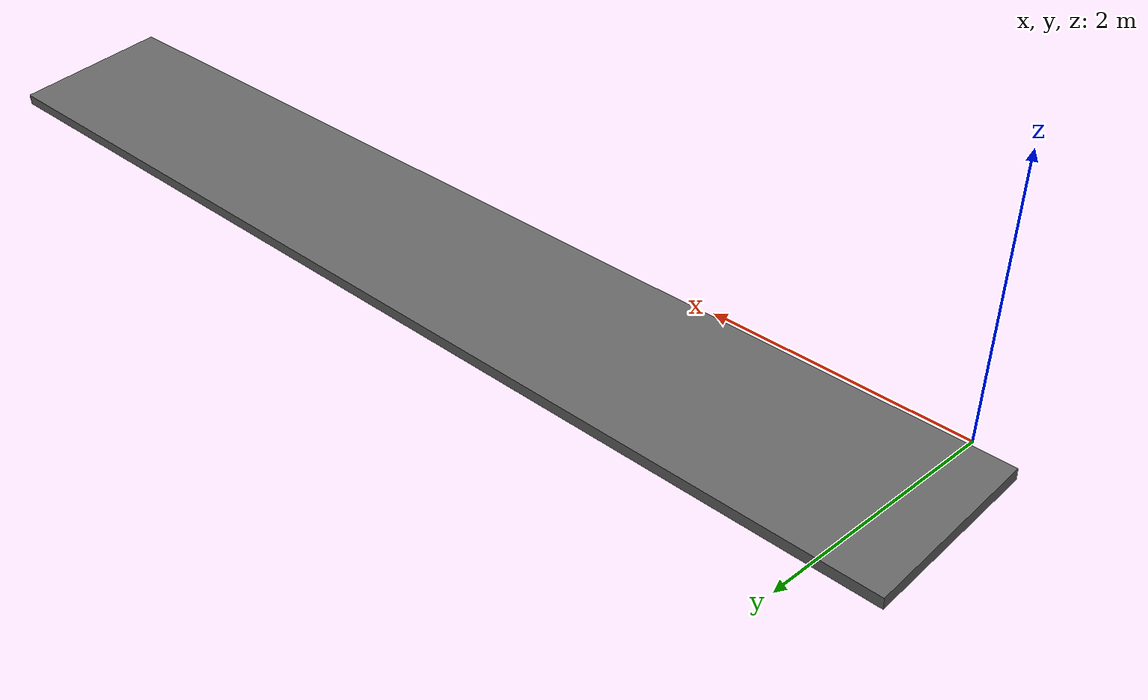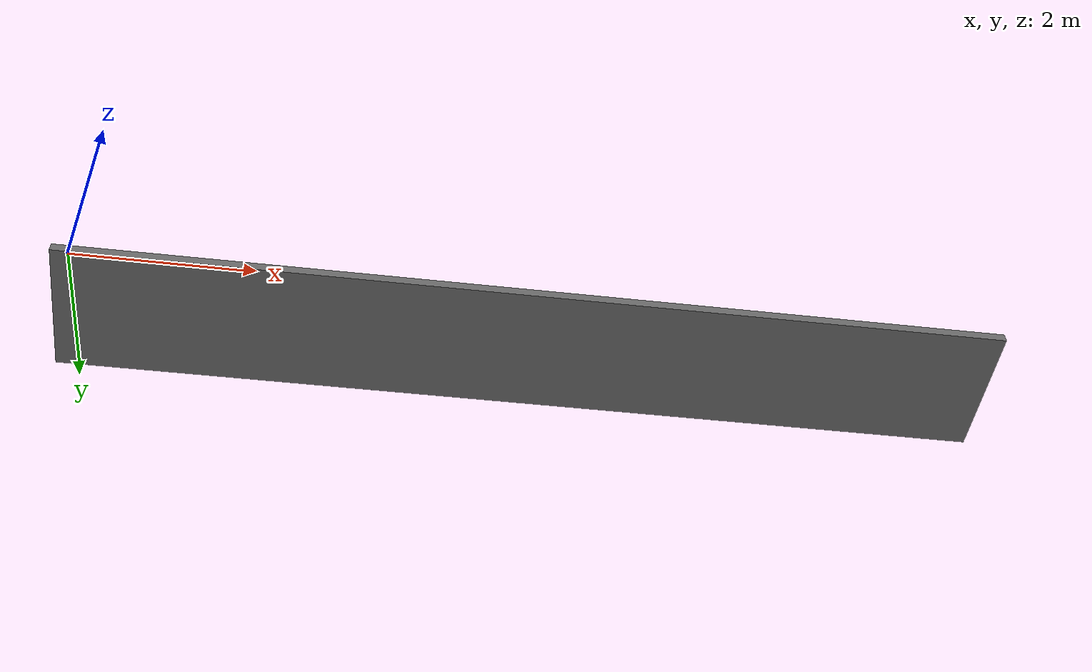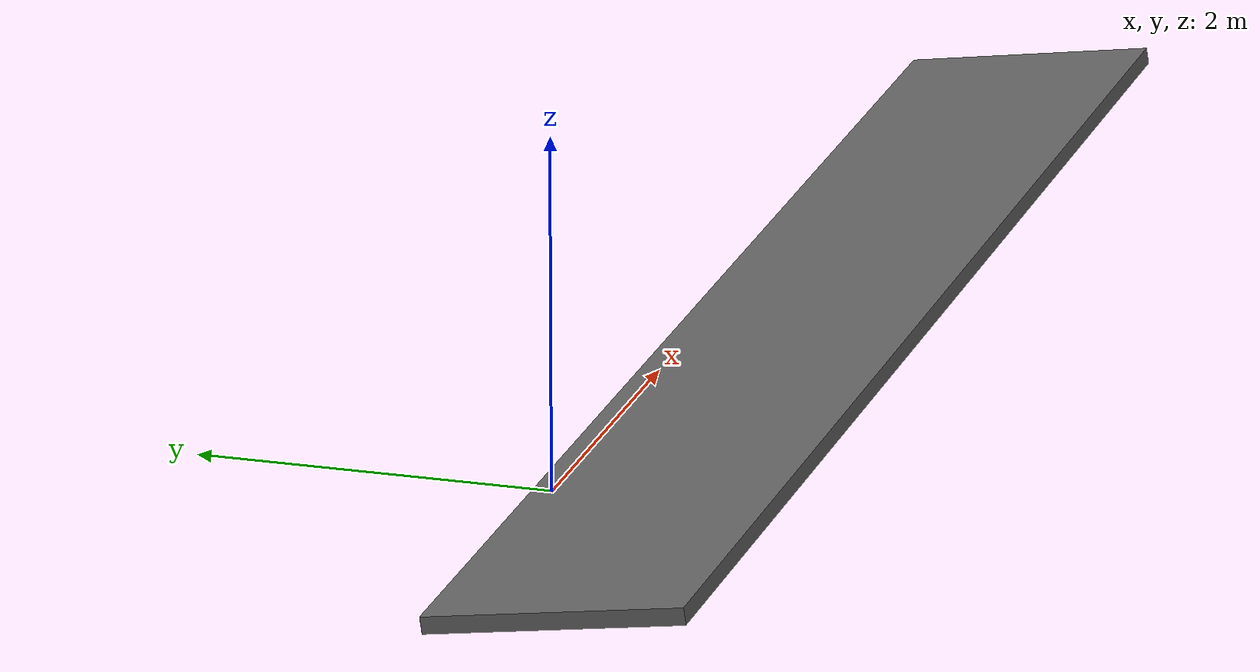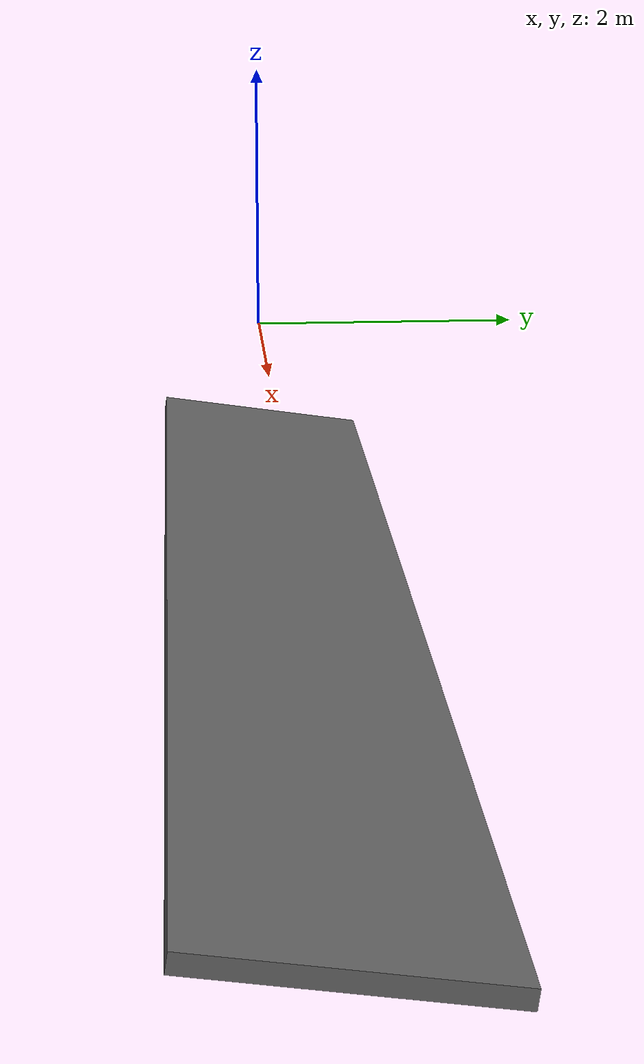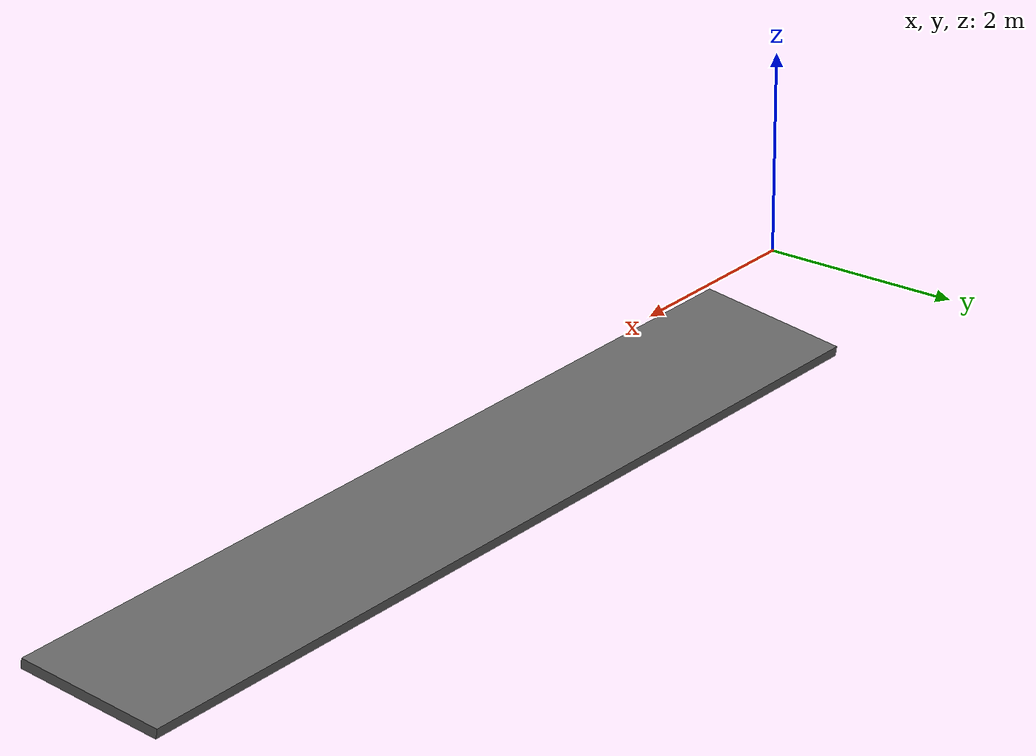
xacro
<?xml version="1.0"?>
<robot name="descending_ramp">
  <link name="ramp_link">
    <contact>
      <lateral_friction value="0.5"/>
      <rolling_friction value="0.0"/>
      <spinning_friction value="0.0"/>
    </contact>
    <inertial>
      <origin xyz="0 0 0"/>
      <mass value="10000"/>
      <inertia ixx="1000" ixy="0" ixz="0" iyy="1000" iyz="0" izz="1000"/>
    </inertial>
    <visual>
      <!-- Para a rampa descendente, a rotação é negativa -->
      <origin xyz="5.0 0 -0.74" rpy="-0.145 0 0"/> <!-- rpy: ~ -8.33° em radianos -->
      <geometry>
        <box size="10.0 1.5 0.1"/>
      </geometry>
      <material name="dark_grey_ramp">
        <color rgba="0.4 0.4 0.4 1"/>
      </material>
    </visual>
    <collision>
      <origin xyz="5.0 0 -0.74" rpy="-0.145 0 0"/>
      <geometry>
        <box size="10.0 1.5 0.1"/>
      </geometry>
    </collision>
  </link>
</robot>
